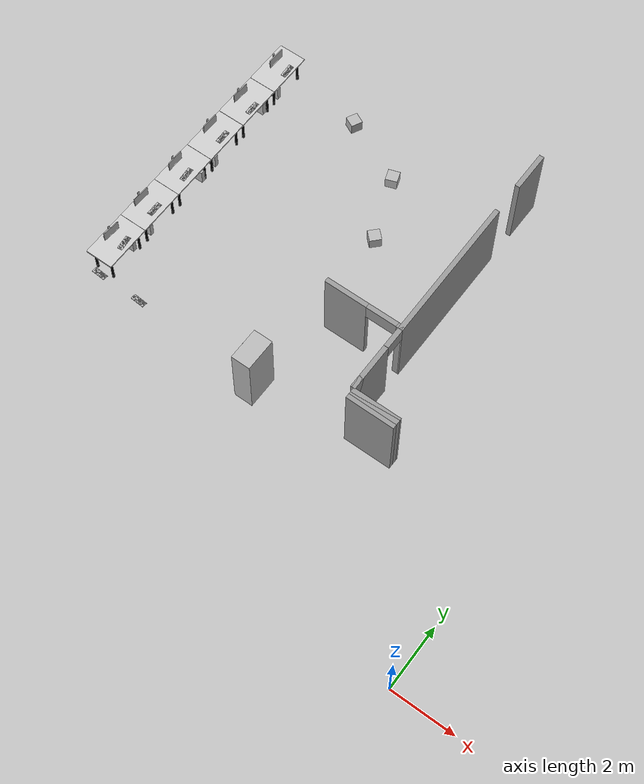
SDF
<sdf version="1.6">
 <world name="default">
  <model name="basement">
   <link name="Wall_148">
    <collision name="Wall_148_Collision">
     <geometry><box><size>1.5 0.15 2.5</size></box></geometry>
     <pose>0 0 1.25 0 -0 0</pose>
    </collision>
    <visual name="Wall_148_Visual">
     <pose>0 0 1.25 0 -0 0</pose>
     <geometry><box><size>1.5 0.15 2.5</size></box></geometry>
     <material>
      <script><uri>file://media/materials/scripts/gazebo.material</uri><name>Gazebo/Grey</name></script>
      <ambient>1 1 1 1</ambient>
     </material>
    </visual>
    <pose>-4.23612 5.13065 0 0 -0 0</pose>
   </link>
   <link name="Wall_150">
    <collision name="Wall_150_Collision">
     <geometry><box><size>1.5 0.15 2.5</size></box></geometry>
     <pose>0 0 1.25 0 -0 0</pose>
    </collision>
    <visual name="Wall_150_Visual">
     <pose>0 0 1.25 0 -0 0</pose>
     <geometry><box><size>1.5 0.15 2.5</size></box></geometry>
     <material>
      <script><uri>file://media/materials/scripts/gazebo.material</uri><name>Gazebo/Grey</name></script>
      <ambient>1 1 1 1</ambient>
     </material>
    </visual>
    <pose>-4.23669 5.20302 0 0 -0 0</pose>
   </link>
   <link name="Wall_23">
    <pose>-5.00676 8.62969 0 0 0 -1.5708</pose>
    <visual name="Wall_23_Visual_0">
     <pose>-1.06412 0 1.25 0 -0 0</pose>
     <geometry><box><size>4.62176 0.15 2.5</size></box></geometry>
     <material>
      <script><uri>file://media/materials/scripts/gazebo.material</uri><name>Gazebo/Grey</name></script>
      <ambient>1 1 1 1</ambient>
     </material>
    </visual>
    <collision name="Wall_23_Collision_0">
     <geometry><box><size>4.62176 0.15 2.5</size></box></geometry>
     <pose>-1.06412 0 1.25 0 -0 0</pose>
    </collision>
    <visual name="Wall_23_Visual_1">
     <pose>2.63296 0 1.25 0 -0 0</pose>
     <geometry><box><size>1.48408 0.15 2.5</size></box></geometry>
     <material>
      <script><uri>file://media/materials/scripts/gazebo.material</uri><name>Gazebo/Grey</name></script>
      <ambient>1 1 1 1</ambient>
     </material>
    </visual>
    <collision name="Wall_23_Collision_1">
     <geometry><box><size>1.48408 0.15 2.5</size></box></geometry>
     <pose>2.63296 0 1.25 0 -0 0</pose>
    </collision>
    <visual name="Wall_23_Visual_2">
     <pose>3.15649 0 1.25 0 -0 0</pose>
     <geometry><box><size>0.437027 0.15 2.5</size></box></geometry>
     <material>
      <script><uri>file://media/materials/scripts/gazebo.material</uri><name>Gazebo/Grey</name></script>
      <ambient>1 1 1 1</ambient>
     </material>
    </visual>
    <collision name="Wall_23_Collision_2">
     <geometry><box><size>0.437027 0.15 2.5</size></box></geometry>
     <pose>3.15649 0 1.25 0 -0 0</pose>
    </collision>
    <visual name="Wall_23_Visual_3">
     <pose>1.56762 0 2.25 0 -0 0</pose>
     <geometry><box><size>0.641714 0.15 0.5</size></box></geometry>
     <material>
      <script><uri>file://media/materials/scripts/gazebo.material</uri><name>Gazebo/Grey</name></script>
      <ambient>1 1 1 1</ambient>
     </material>
    </visual>
    <collision name="Wall_23_Collision_3">
     <geometry><box><size>0.641714 0.15 0.5</size></box></geometry>
     <pose>1.56762 0 2.25 0 -0 0</pose>
    </collision>
   </link>
   <link name="Wall_25">
    <pose>-6.22027 7.45768 0 0 -0 0</pose>
    <visual name="Wall_25_Visual_0">
     <pose>-0.572125 0 1.25 0 -0 0</pose>
     <geometry><box><size>1.35575 0.15 2.5</size></box></geometry>
     <material>
      <script><uri>file://media/materials/scripts/gazebo.material</uri><name>Gazebo/Grey</name></script>
      <ambient>1 1 1 1</ambient>
     </material>
    </visual>
    <collision name="Wall_25_Collision_0">
     <geometry><box><size>1.35575 0.15 2.5</size></box></geometry>
     <pose>-0.572125 0 1.25 0 -0 0</pose>
    </collision>
    <visual name="Wall_25_Visual_1">
     <pose>1.16237 0 1.25 0 -0 0</pose>
     <geometry><box><size>0.17525 0.15 2.5</size></box></geometry>
     <material>
      <script><uri>file://media/materials/scripts/gazebo.material</uri><name>Gazebo/Grey</name></script>
      <ambient>1 1 1 1</ambient>
     </material>
    </visual>
    <collision name="Wall_25_Collision_1">
     <geometry><box><size>0.17525 0.15 2.5</size></box></geometry>
     <pose>1.16237 0 1.25 0 -0 0</pose>
    </collision>
    <visual name="Wall_25_Visual_2">
     <pose>0.59025 0 2.25 0 -0 0</pose>
     <geometry><box><size>0.969 0.15 0.5</size></box></geometry>
     <material>
      <script><uri>file://media/materials/scripts/gazebo.material</uri><name>Gazebo/Grey</name></script>
      <ambient>1 1 1 1</ambient>
     </material>
    </visual>
    <collision name="Wall_25_Collision_2">
     <geometry><box><size>0.969 0.15 0.5</size></box></geometry>
     <pose>0.59025 0 2.25 0 -0 0</pose>
    </collision>
   </link>
   <link name="Wall_27">
    <collision name="Wall_27_Collision">
     <geometry><box><size>1.25 0.15 2.5</size></box></geometry>
     <pose>0 0 1.25 0 -0 0</pose>
    </collision>
    <visual name="Wall_27_Visual">
     <pose>0 0 1.25 0 -0 0</pose>
     <geometry><box><size>1.25 0.15 2.5</size></box></geometry>
     <material>
      <script><uri>file://media/materials/scripts/gazebo.material</uri><name>Gazebo/Grey</name></script>
      <ambient>1 1 1 1</ambient>
     </material>
    </visual>
    <pose>-4.99983 13.6109 0 0 -0 1.5708</pose>
   </link>
   <link name="Wall_57">
    <collision name="Wall_57_Collision">
     <geometry><box><size>1.5 0.15 2.5</size></box></geometry>
     <pose>0 0 1.25 0 -0 0</pose>
    </collision>
    <visual name="Wall_57_Visual">
     <pose>0 0 1.25 0 -0 0</pose>
     <geometry><box><size>1.5 0.15 2.5</size></box></geometry>
     <material>
      <script><uri>file://media/materials/scripts/gazebo.material</uri><name>Gazebo/Grey</name></script>
      <ambient>1 1 1 1</ambient>
     </material>
    </visual>
    <pose>-4.23706 4.99373 0 0 -0 0</pose>
   </link>
   <static>1</static>
  </model>
  <model name="wardrobe">
   <link name="link">
    <visual name="visual">
     <geometry><mesh><uri>model://cabinet/meshes/cabinet.dae</uri><scale>1 1 1</scale></mesh></geometry>
    </visual>
    <collision name="collision">
     <geometry><mesh><uri>model://cabinet/meshes/cabinet.dae</uri><scale>1 1 1</scale></mesh></geometry>
    </collision>
   </link>
   <static>1</static>
   <pose>-7.88879 4.71222 0 0 0 -1.5707</pose>
  </model>
  <model name="office_table">
   <link name="link">
    <visual name="visual">
     <geometry><mesh><uri>model://office_table/meshes/office_table.dae</uri><scale>1 1 1</scale></mesh></geometry>
    </visual>
    <collision name="collision">
     <geometry><mesh><uri>model://office_table/meshes/office_table.dae</uri><scale>1 1 1</scale></mesh></geometry>
    </collision>
   </link>
   <static>1</static>
   <pose>-13.5998 10.3558 0 0 -0 1.5707</pose>
  </model>
  <model name="office_table_0">
   <link name="link">
    <visual name="visual">
     <geometry><mesh><uri>model://office_table/meshes/office_table.dae</uri><scale>1 1 1</scale></mesh></geometry>
    </visual>
    <collision name="collision">
     <geometry><mesh><uri>model://office_table/meshes/office_table.dae</uri><scale>1 1 1</scale></mesh></geometry>
    </collision>
   </link>
   <static>1</static>
   <pose>-13.6 5.80688 0 0 -0 1.5707</pose>
  </model>
  <model name="office_table_1">
   <link name="link">
    <visual name="visual">
     <geometry><mesh><uri>model://office_table/meshes/office_table.dae</uri><scale>1 1 1</scale></mesh></geometry>
    </visual>
    <collision name="collision">
     <geometry><mesh><uri>model://office_table/meshes/office_table.dae</uri><scale>1 1 1</scale></mesh></geometry>
    </collision>
   </link>
   <static>1</static>
   <pose>-13.6 7.32319 0 0 -0 1.5707</pose>
  </model>
  <model name="office_table_3">
   <link name="link">
    <visual name="visual">
     <geometry><mesh><uri>model://office_table/meshes/office_table.dae</uri><scale>1 1 1</scale></mesh></geometry>
    </visual>
    <collision name="collision">
     <geometry><mesh><uri>model://office_table/meshes/office_table.dae</uri><scale>1 1 1</scale></mesh></geometry>
    </collision>
   </link>
   <static>1</static>
   <pose>-13.5997 11.8755 0 0 -0 1.5707</pose>
  </model>
  <model name="office_table_4">
   <link name="link">
    <visual name="visual">
     <geometry><mesh><uri>model://office_table/meshes/office_table.dae</uri><scale>1 1 1</scale></mesh></geometry>
    </visual>
    <collision name="collision">
     <geometry><mesh><uri>model://office_table/meshes/office_table.dae</uri><scale>1 1 1</scale></mesh></geometry>
    </collision>
   </link>
   <static>1</static>
   <pose>-13.5998 8.83935 0 0 -0 1.5707</pose>
  </model>
  <model name="office_table_7">
   <link name="link">
    <visual name="visual">
     <geometry><mesh><uri>model://office_table/meshes/office_table.dae</uri><scale>1 1 1</scale></mesh></geometry>
    </visual>
    <collision name="collision">
     <geometry><mesh><uri>model://office_table/meshes/office_table.dae</uri><scale>1 1 1</scale></mesh></geometry>
    </collision>
   </link>
   <static>1</static>
   <pose>-13.5998 13.393 0 0 -0 1.5707</pose>
  </model>
  <model name="pc_2">
   <link name="link">
    <visual name="visual">
     <geometry><mesh><uri>model://pc/meshes/pc.dae</uri><scale>1 1 1</scale></mesh></geometry>
    </visual>
    <collision name="collision">
     <geometry><mesh><uri>model://pc/meshes/pc.dae</uri><scale>1 1 1</scale></mesh></geometry>
    </collision>
   </link>
   <static>1</static>
   <pose>-13.5783 6.16697 0 0 -0 1.5707</pose>
  </model>
  <model name="pc_3">
   <link name="link">
    <visual name="visual">
     <geometry><mesh><uri>model://pc/meshes/pc.dae</uri><scale>1 1 1</scale></mesh></geometry>
    </visual>
    <collision name="collision">
     <geometry><mesh><uri>model://pc/meshes/pc.dae</uri><scale>1 1 1</scale></mesh></geometry>
    </collision>
   </link>
   <static>1</static>
   <pose>-13.5256 6.88608 0 0 -0 1.5707</pose>
  </model>
  <model name="pc_4">
   <link name="link">
    <visual name="visual">
     <geometry><mesh><uri>model://pc/meshes/pc.dae</uri><scale>1 1 1</scale></mesh></geometry>
    </visual>
    <collision name="collision">
     <geometry><mesh><uri>model://pc/meshes/pc.dae</uri><scale>1 1 1</scale></mesh></geometry>
    </collision>
   </link>
   <static>1</static>
   <pose>-13.5073 9.87994 0 0 -0 1.5707</pose>
  </model>
  <model name="pc_5">
   <link name="link">
    <visual name="visual">
     <geometry><mesh><uri>model://pc/meshes/pc.dae</uri><scale>1 1 1</scale></mesh></geometry>
    </visual>
    <collision name="collision">
     <geometry><mesh><uri>model://pc/meshes/pc.dae</uri><scale>1 1 1</scale></mesh></geometry>
    </collision>
   </link>
   <static>1</static>
   <pose>-13.5206 12.2188 0 0 -0 1.5707</pose>
  </model>
  <model name="pc_6">
   <link name="link">
    <visual name="visual">
     <geometry><mesh><uri>model://pc/meshes/pc.dae</uri><scale>1 1 1</scale></mesh></geometry>
    </visual>
    <collision name="collision">
     <geometry><mesh><uri>model://pc/meshes/pc.dae</uri><scale>1 1 1</scale></mesh></geometry>
    </collision>
   </link>
   <static>1</static>
   <pose>-13.5138 12.9492 0 0 -0 1.5707</pose>
  </model>
  <model name="pc_7">
   <link name="link">
    <visual name="visual">
     <geometry><mesh><uri>model://pc/meshes/pc.dae</uri><scale>1 1 1</scale></mesh></geometry>
    </visual>
    <collision name="collision">
     <geometry><mesh><uri>model://pc/meshes/pc.dae</uri><scale>1 1 1</scale></mesh></geometry>
    </collision>
   </link>
   <static>1</static>
   <pose>-13.4711 9.2109 0 0 -0 1.5707</pose>
  </model>
  <model name="monitor_2">
   <link name="link">
    <visual name="visual">
     <geometry><mesh><uri>model://monitor/meshes/monitor.dae</uri><scale>1 1 1</scale></mesh></geometry>
    </visual>
    <collision name="collision">
     <geometry><mesh><uri>model://monitor/meshes/monitor.dae</uri><scale>1 1 1</scale></mesh></geometry>
    </collision>
   </link>
   <static>1</static>
   <pose>-13.798 5.83031 1 0 -0 1.48637</pose>
  </model>
  <model name="monitor_3">
   <link name="link">
    <visual name="visual">
     <geometry><mesh><uri>model://monitor/meshes/monitor.dae</uri><scale>1 1 1</scale></mesh></geometry>
    </visual>
    <collision name="collision">
     <geometry><mesh><uri>model://monitor/meshes/monitor.dae</uri><scale>1 1 1</scale></mesh></geometry>
    </collision>
   </link>
   <static>1</static>
   <pose>-13.8598 10.4072 1 0 -0 1.53622</pose>
  </model>
  <model name="monitor_4">
   <link name="link">
    <visual name="visual">
     <geometry><mesh><uri>model://monitor/meshes/monitor.dae</uri><scale>1 1 1</scale></mesh></geometry>
    </visual>
    <collision name="collision">
     <geometry><mesh><uri>model://monitor/meshes/monitor.dae</uri><scale>1 1 1</scale></mesh></geometry>
    </collision>
   </link>
   <static>1</static>
   <pose>-13.7446 13.4732 1 0 -0 1.52654</pose>
  </model>
  <model name="monitor_5">
   <link name="link">
    <visual name="visual">
     <geometry><mesh><uri>model://monitor/meshes/monitor.dae</uri><scale>1 1 1</scale></mesh></geometry>
    </visual>
    <collision name="collision">
     <geometry><mesh><uri>model://monitor/meshes/monitor.dae</uri><scale>1 1 1</scale></mesh></geometry>
    </collision>
   </link>
   <static>1</static>
   <pose>-13.8225 11.8228 1 0 -0 1.50187</pose>
  </model>
  <model name="monitor_6">
   <link name="link">
    <visual name="visual">
     <geometry><mesh><uri>model://monitor/meshes/monitor.dae</uri><scale>1 1 1</scale></mesh></geometry>
    </visual>
    <collision name="collision">
     <geometry><mesh><uri>model://monitor/meshes/monitor.dae</uri><scale>1 1 1</scale></mesh></geometry>
    </collision>
   </link>
   <static>1</static>
   <pose>-13.8603 7.23139 1 0 -0 1.53421</pose>
  </model>
  <model name="monitor_7">
   <link name="link">
    <visual name="visual">
     <geometry><mesh><uri>model://monitor/meshes/monitor.dae</uri><scale>1 1 1</scale></mesh></geometry>
    </visual>
    <collision name="collision">
     <geometry><mesh><uri>model://monitor/meshes/monitor.dae</uri><scale>1 1 1</scale></mesh></geometry>
    </collision>
   </link>
   <static>1</static>
   <pose>-13.8577 8.77683 1 0 -0 1.56838</pose>
  </model>
  <model name="keyboard">
   <link name="link">
    <visual name="visual">
     <geometry><mesh><uri>model://keyboard/meshes/keyboard.dae</uri><scale>1 1 1</scale></mesh></geometry>
    </visual>
    <collision name="collision">
     <geometry><mesh><uri>model://keyboard/meshes/keyboard.dae</uri><scale>1 1 1</scale></mesh></geometry>
    </collision>
   </link>
   <static>1</static>
   <pose>-11.826 4.63551 0.78 0 -0 3.0713</pose>
  </model>
  <model name="keyboard_0">
   <link name="link">
    <visual name="visual">
     <geometry><mesh><uri>model://keyboard/meshes/keyboard.dae</uri><scale>1 1 1</scale></mesh></geometry>
    </visual>
    <collision name="collision">
     <geometry><mesh><uri>model://keyboard/meshes/keyboard.dae</uri><scale>1 1 1</scale></mesh></geometry>
    </collision>
   </link>
   <static>1</static>
   <pose>-13.3945 8.70757 0.78 0 -0 1.64663</pose>
  </model>
  <model name="keyboard_1">
   <link name="link">
    <visual name="visual">
     <geometry><mesh><uri>model://keyboard/meshes/keyboard.dae</uri><scale>1 1 1</scale></mesh></geometry>
    </visual>
    <collision name="collision">
     <geometry><mesh><uri>model://keyboard/meshes/keyboard.dae</uri><scale>1 1 1</scale></mesh></geometry>
    </collision>
   </link>
   <static>1</static>
   <pose>-13.2965 13.4345 0.78 0 -0 1.62981</pose>
  </model>
  <model name="keyboard_2">
   <link name="link">
    <visual name="visual">
     <geometry><mesh><uri>model://keyboard/meshes/keyboard.dae</uri><scale>1 1 1</scale></mesh></geometry>
    </visual>
    <collision name="collision">
     <geometry><mesh><uri>model://keyboard/meshes/keyboard.dae</uri><scale>1 1 1</scale></mesh></geometry>
    </collision>
   </link>
   <static>1</static>
   <pose>-13.3673 10.3759 0.78 0 -0 1.59558</pose>
  </model>
  <model name="keyboard_3">
   <link name="link">
    <visual name="visual">
     <geometry><mesh><uri>model://keyboard/meshes/keyboard.dae</uri><scale>1 1 1</scale></mesh></geometry>
    </visual>
    <collision name="collision">
     <geometry><mesh><uri>model://keyboard/meshes/keyboard.dae</uri><scale>1 1 1</scale></mesh></geometry>
    </collision>
   </link>
   <static>1</static>
   <pose>-13.2611 4.66284 0.78 0 -0 3.07383</pose>
  </model>
  <model name="keyboard_5">
   <link name="link">
    <visual name="visual">
     <geometry><mesh><uri>model://keyboard/meshes/keyboard.dae</uri><scale>1 1 1</scale></mesh></geometry>
    </visual>
    <collision name="collision">
     <geometry><mesh><uri>model://keyboard/meshes/keyboard.dae</uri><scale>1 1 1</scale></mesh></geometry>
    </collision>
   </link>
   <static>1</static>
   <pose>-13.3033 11.7124 0.78 0 -0 1.58421</pose>
  </model>
  <model name="keyboard_6">
   <link name="link">
    <visual name="visual">
     <geometry><mesh><uri>model://keyboard/meshes/keyboard.dae</uri><scale>1 1 1</scale></mesh></geometry>
    </visual>
    <collision name="collision">
     <geometry><mesh><uri>model://keyboard/meshes/keyboard.dae</uri><scale>1 1 1</scale></mesh></geometry>
    </collision>
   </link>
   <static>1</static>
   <pose>-13.3694 5.83224 0.78 0 0 -1.45503</pose>
  </model>
  <model name="keyboard_7">
   <link name="link">
    <visual name="visual">
     <geometry><mesh><uri>model://keyboard/meshes/keyboard.dae</uri><scale>1 1 1</scale></mesh></geometry>
    </visual>
    <collision name="collision">
     <geometry><mesh><uri>model://keyboard/meshes/keyboard.dae</uri><scale>1 1 1</scale></mesh></geometry>
    </collision>
   </link>
   <static>1</static>
   <pose>-13.3816 7.23251 0.78 0 -0 1.57888</pose>
  </model>
  <model name="box">
   <link name="link">
    <visual name="visual">
     <geometry><mesh><uri>model://box/meshes/box.dae</uri><scale>1 1 1</scale></mesh></geometry>
    </visual>
    <collision name="collision">
     <geometry><mesh><uri>model://box/meshes/box.dae</uri><scale>1 1 1</scale></mesh></geometry>
    </collision>
   </link>
   <static>1</static>
   <pose>-8.68765 12.4895 0 0 -0 0.329383</pose>
  </model>
  <model name="box_0">
   <link name="link">
    <visual name="visual">
     <geometry><mesh><uri>model://box/meshes/box.dae</uri><scale>1 1 1</scale></mesh></geometry>
    </visual>
    <collision name="collision">
     <geometry><mesh><uri>model://box/meshes/box.dae</uri><scale>1 1 1</scale></mesh></geometry>
    </collision>
   </link>
   <static>1</static>
   <pose>-8.10115 10.6196 0.139589 -0.000172 1.5707 -0.759378</pose>
  </model>
  <model name="box_1">
   <link name="link">
    <visual name="visual">
     <geometry><mesh><uri>model://box/meshes/box.dae</uri><scale>1 1 1</scale></mesh></geometry>
    </visual>
    <collision name="collision">
     <geometry><mesh><uri>model://box/meshes/box.dae</uri><scale>1 1 1</scale></mesh></geometry>
    </collision>
   </link>
   <static>1</static>
   <pose>-10.9553 13.5552 0.176293 1.5707 -0 1.10484</pose>
  </model>
 </world>
</sdf>
